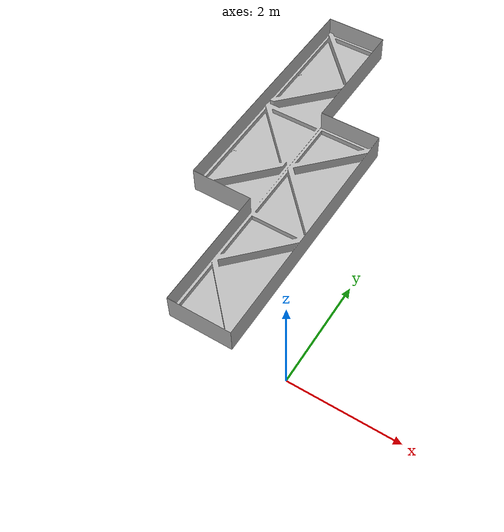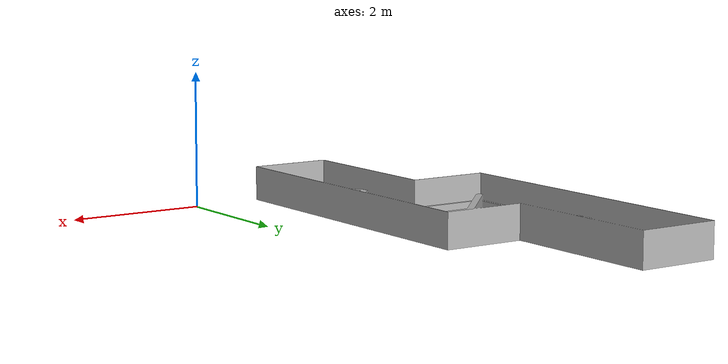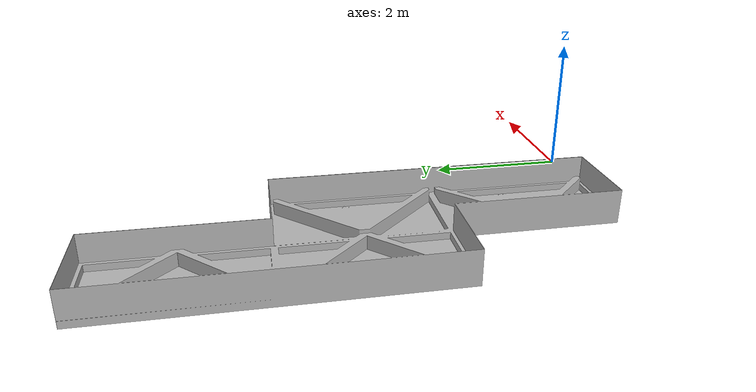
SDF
<?xml version="1.0" ?>
<sdf version="1.6">
  <model name="krail_plane_20cm">
    <static>true</static>
    <pose>-1 0 0 1.5708 0 0</pose>
    <link name="link">
      <collision name="collision">
        <geometry>
          <mesh>
            <scale>0.01 0.01 0.01</scale>
            <uri>model://krail_plane_20cm/KRail_plane_20cm.dae</uri>
          </mesh>
        </geometry>
        <surface>
          <friction>
            <ode>
              <mu>100</mu>
              <mu2>50</mu2>
            </ode>
          </friction>
        </surface>
      </collision>
      <visual name="visual">
        <geometry>
          <mesh>
            <scale>0.01 0.01 0.01</scale>
            <uri>model://krail_plane_20cm/KRail_plane_20cm.dae</uri>
          </mesh>
        </geometry>
      </visual>
    </link>
  </model>
</sdf>
